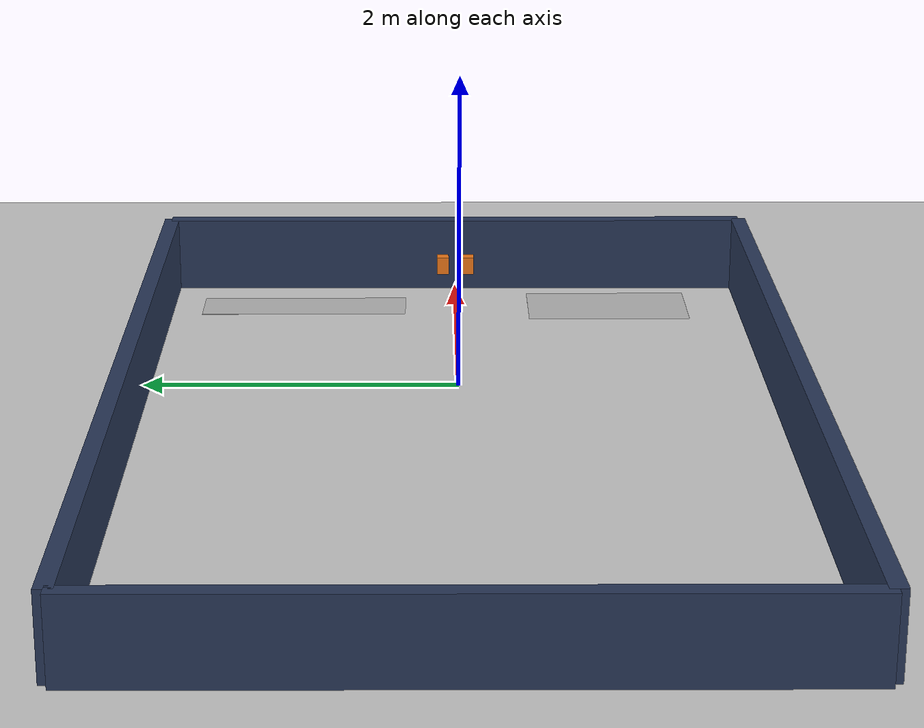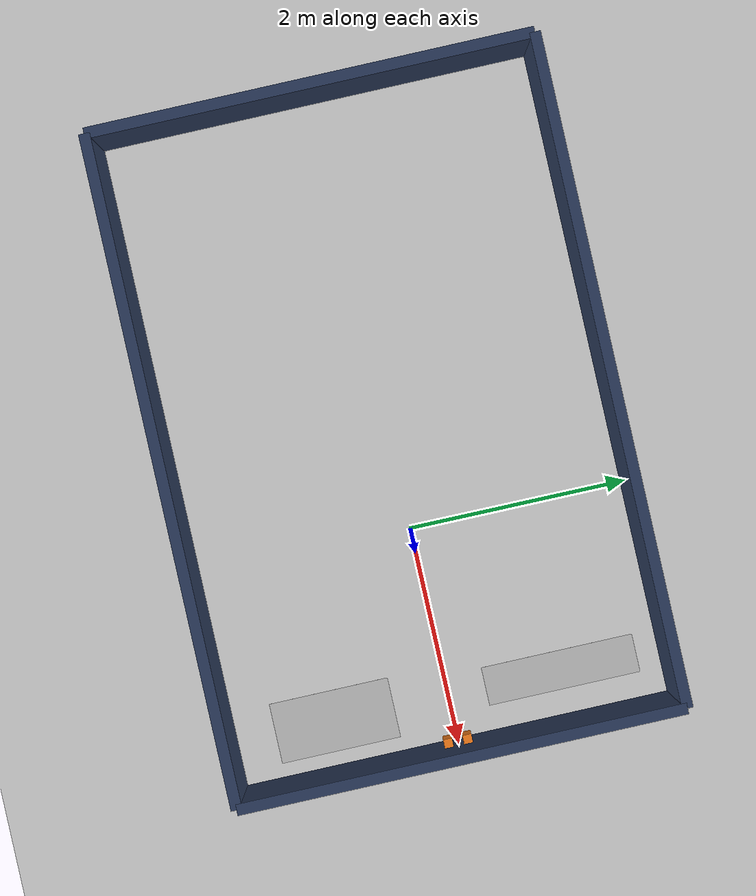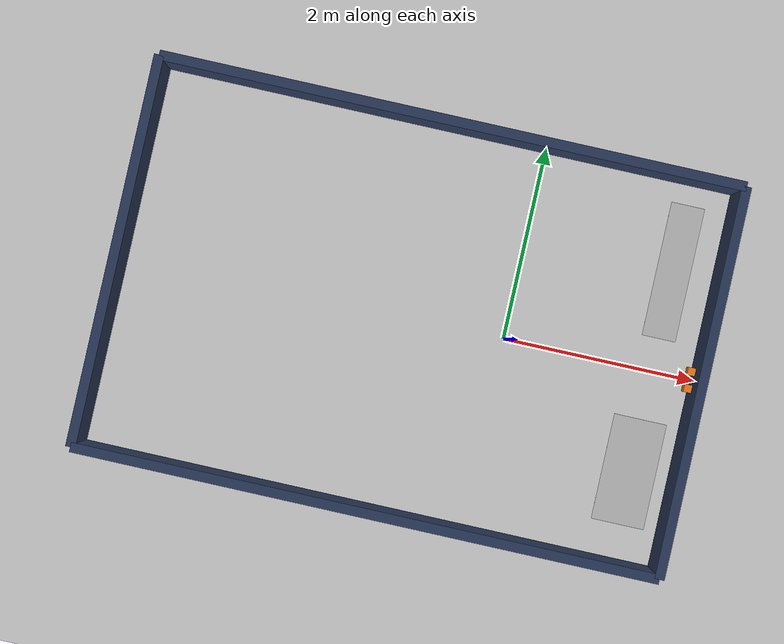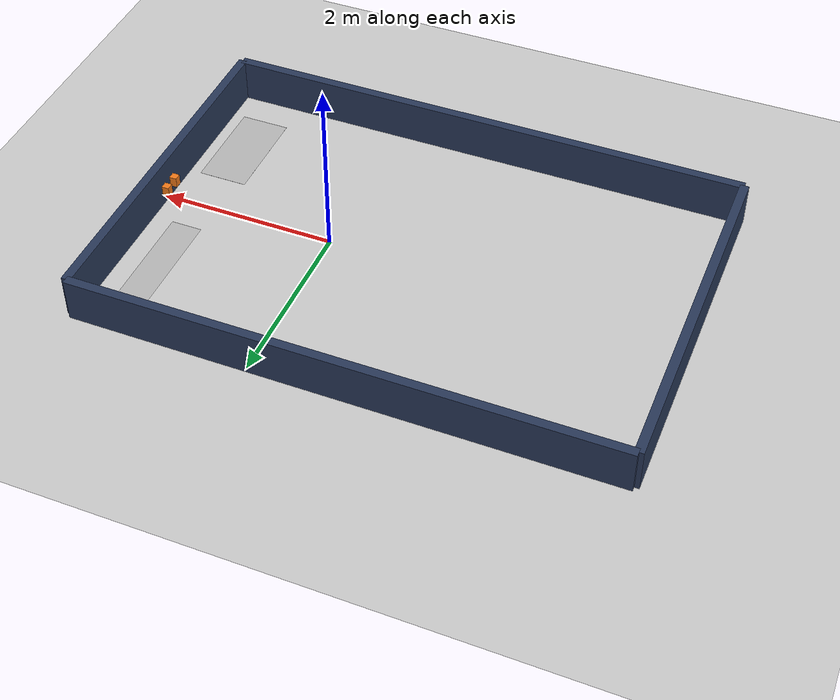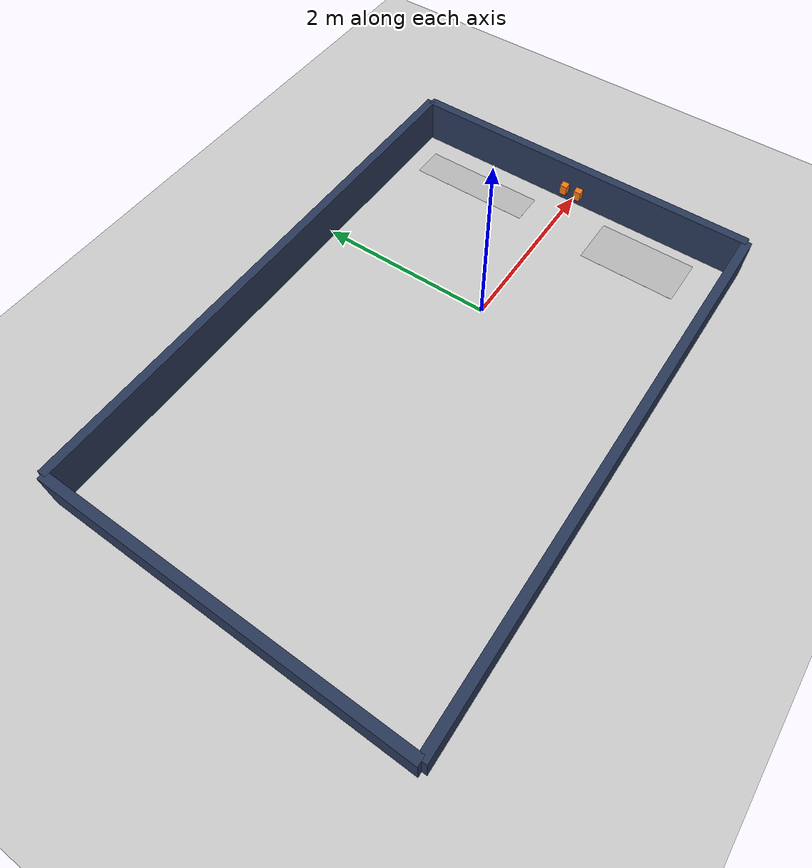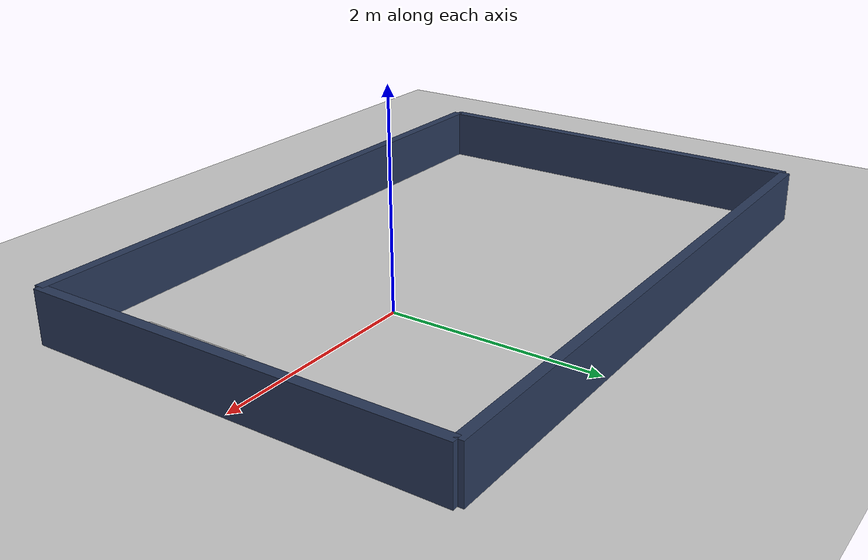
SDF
<?xml version="1.0" ?>
<sdf version="1.6">
  <world name="dock_challenge">

    <plugin name="gazebo_ros_state" filename="libgazebo_ros_state.so">
      <ros>
        <namespace>/gazebo</namespace>
      </ros>
      <update_rate>1.0</update_rate>
    </plugin>

    <scene>
      <ambient>0.8 0.8 0.8 1.0</ambient>
      <background>0.75 0.78 0.82 1.0</background>
      <shadows>true</shadows>
      <grid>false</grid>
    </scene>

    <include>
      <uri>model://sun</uri>
    </include>

    <model name="suelo">
      <static>true</static>
      <link name="link">
        <collision name="collision">
          <geometry>
            <plane>
              <normal>0 0 1</normal>
              <size>100 100</size>
            </plane>
          </geometry>
          <surface>
            <friction>
              <ode><mu>1.0</mu><mu2>1.0</mu2></ode>
            </friction>
          </surface>
        </collision>
        <visual name="visual">
          <geometry>
            <plane>
              <normal>0 0 1</normal>
              <size>100 100</size>
            </plane>
          </geometry>
          <material>
            <script>
              <uri>model://create3_dock_challenge/materials/scripts</uri>
              <uri>model://create3_dock_challenge/materials/textures</uri>
              <name>Kalman/FloorMarble</name>
            </script>
          </material>
        </visual>
      </link>
    </model>

    <model name="back_wall">
      <static>true</static>
      <pose>2.0 0 0.25 0 0 0</pose>
      <link name="link">
        <collision name="collision">
          <geometry>
            <box><size>0.1 4.0 0.5</size></box>
          </geometry>
        </collision>
        <visual name="visual">
          <geometry>
            <box><size>0.1 4.0 0.5</size></box>
          </geometry>
          <material>
            <ambient>0.09 0.13 0.22 1</ambient>
            <diffuse>0.16 0.22 0.35 1</diffuse>
            <specular>0.05 0.05 0.05 1</specular>
          </material>
        </visual>
      </link>
    </model>

    <model name="marker_box_left">
      <static>true</static>
      <pose>1.9095 0.0875 0.19 0 0 0</pose>
      <link name="link">
        <collision name="collision">
          <geometry>
            <box><size>0.08 0.08 0.12</size></box>
          </geometry>
        </collision>
        <visual name="visual">
          <geometry>
            <box><size>0.08 0.08 0.12</size></box>
          </geometry>
          <material>
            <ambient>0.75 0.35 0.05 1</ambient>
            <diffuse>0.95 0.48 0.10 1</diffuse>
            <specular>0.1 0.1 0.1 1</specular>
          </material>
        </visual>
      </link>
    </model>

    <model name="marker_box_right">
      <static>true</static>
      <pose>1.9095 -0.0875 0.19 0 0 0</pose>
      <link name="link">
        <collision name="collision">
          <geometry>
            <box><size>0.08 0.08 0.12</size></box>
          </geometry>
        </collision>
        <visual name="visual">
          <geometry>
            <box><size>0.08 0.08 0.12</size></box>
          </geometry>
          <material>
            <ambient>0.75 0.35 0.05 1</ambient>
            <diffuse>0.95 0.48 0.10 1</diffuse>
            <specular>0.1 0.1 0.1 1</specular>
          </material>
        </visual>
      </link>
    </model>

    <model name="kalman_logo">
      <static>true</static>
      <pose>1.55 1.05 0.002 0 0 4.7124</pose>
      <link name="link">
        <visual name="visual">
          <geometry>
            <plane>
              <normal>0 0 1</normal>
              <size>1.40 0.35</size>
            </plane>
          </geometry>
          <material>
            <script>
              <uri>model://create3_dock_challenge/materials/scripts</uri>
              <uri>model://create3_dock_challenge/materials/textures</uri>
              <name>Kalman/Logo</name>
            </script>
          </material>
        </visual>
      </link>
    </model>

    <model name="hrfest_logo">
      <static>true</static>
      <pose>1.55 -1.05 0.002 0 0 4.7124</pose>
      <link name="link">
        <visual name="visual">
          <geometry>
            <plane>
              <normal>0 0 1</normal>
              <size>1.10 0.55</size>
            </plane>
          </geometry>
          <material>
            <script>
              <uri>model://create3_dock_challenge/materials/scripts</uri>
              <uri>model://create3_dock_challenge/materials/textures</uri>
              <name>Kalman/HRFest</name>
            </script>
          </material>
        </visual>
      </link>
    </model>

    <!-- Paredes laterales, delimitan el area de maniobra -->
    <model name="side_wall_left">
      <static>true</static>
      <pose>-1.0 2.0 0.25 0 0 0</pose>
      <link name="link">
        <collision name="collision">
          <geometry><box><size>6.0 0.1 0.5</size></box></geometry>
        </collision>
        <visual name="visual">
          <geometry><box><size>6.0 0.1 0.5</size></box></geometry>
          <material>
            <ambient>0.09 0.13 0.22 1</ambient>
            <diffuse>0.16 0.22 0.35 1</diffuse>
            <specular>0.05 0.05 0.05 1</specular>
          </material>
        </visual>
      </link>
    </model>

    <model name="side_wall_right">
      <static>true</static>
      <pose>-1.0 -2.0 0.25 0 0 0</pose>
      <link name="link">
        <collision name="collision">
          <geometry><box><size>6.0 0.1 0.5</size></box></geometry>
        </collision>
        <visual name="visual">
          <geometry><box><size>6.0 0.1 0.5</size></box></geometry>
          <material>
            <ambient>0.09 0.13 0.22 1</ambient>
            <diffuse>0.16 0.22 0.35 1</diffuse>
            <specular>0.05 0.05 0.05 1</specular>
          </material>
        </visual>
      </link>
    </model>

    <model name="front_wall">
      <static>true</static>
      <pose>-4.0 0 0.25 0 0 0</pose>
      <link name="link">
        <collision name="collision">
          <geometry><box><size>0.1 4.0 0.5</size></box></geometry>
        </collision>
        <visual name="visual">
          <geometry><box><size>0.1 4.0 0.5</size></box></geometry>
          <material>
            <ambient>0.09 0.13 0.22 1</ambient>
            <diffuse>0.16 0.22 0.35 1</diffuse>
            <specular>0.05 0.05 0.05 1</specular>
          </material>
        </visual>
      </link>
    </model>

    <gui fullscreen="0">
      <camera name="user_camera">
        <pose>-1.8 -2.2 2.2 0 0.55 0.85</pose>
      </camera>
    </gui>

  </world>
</sdf>
